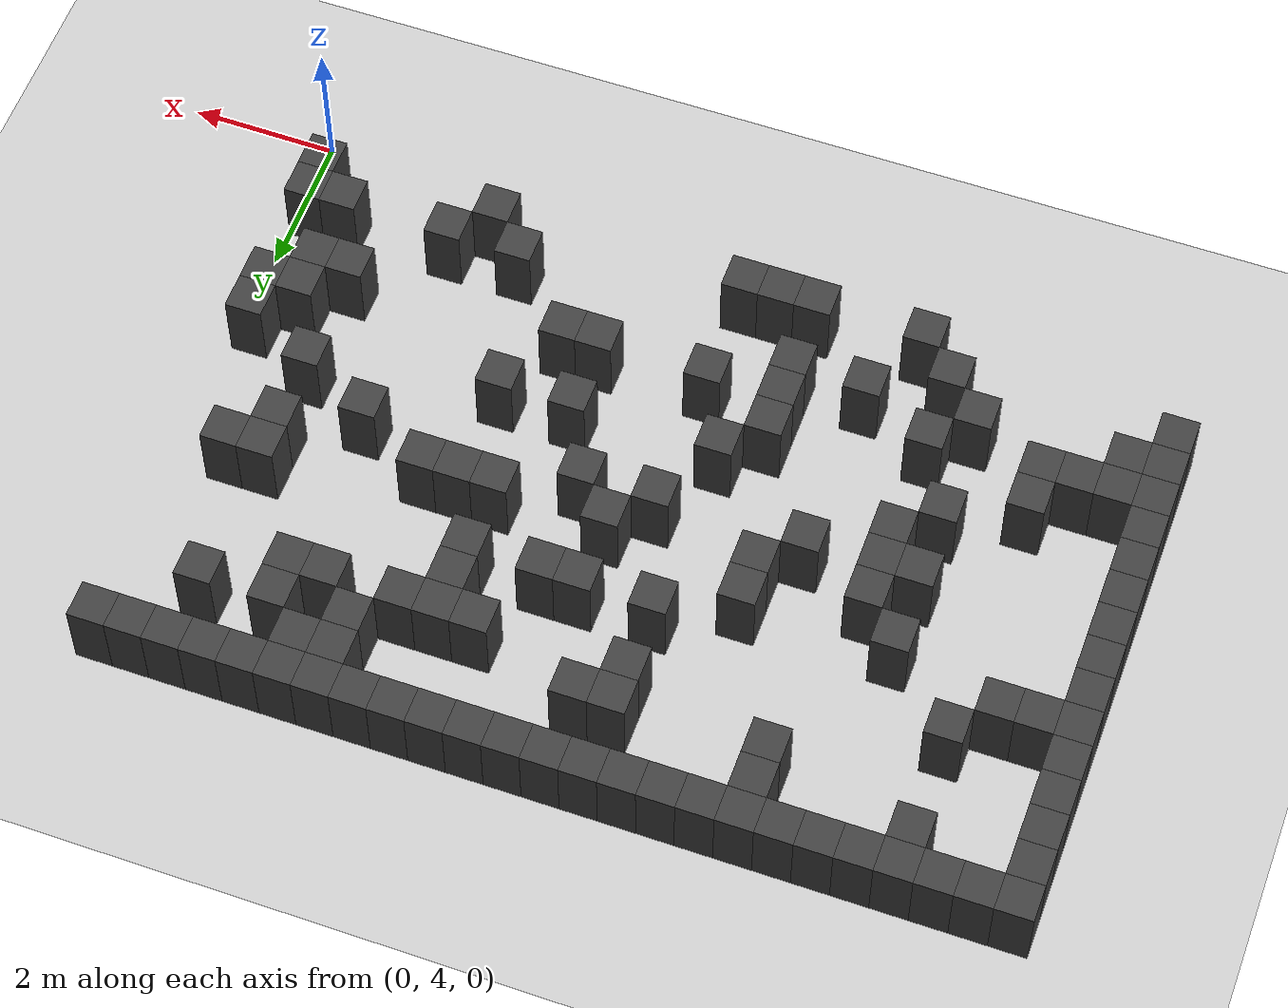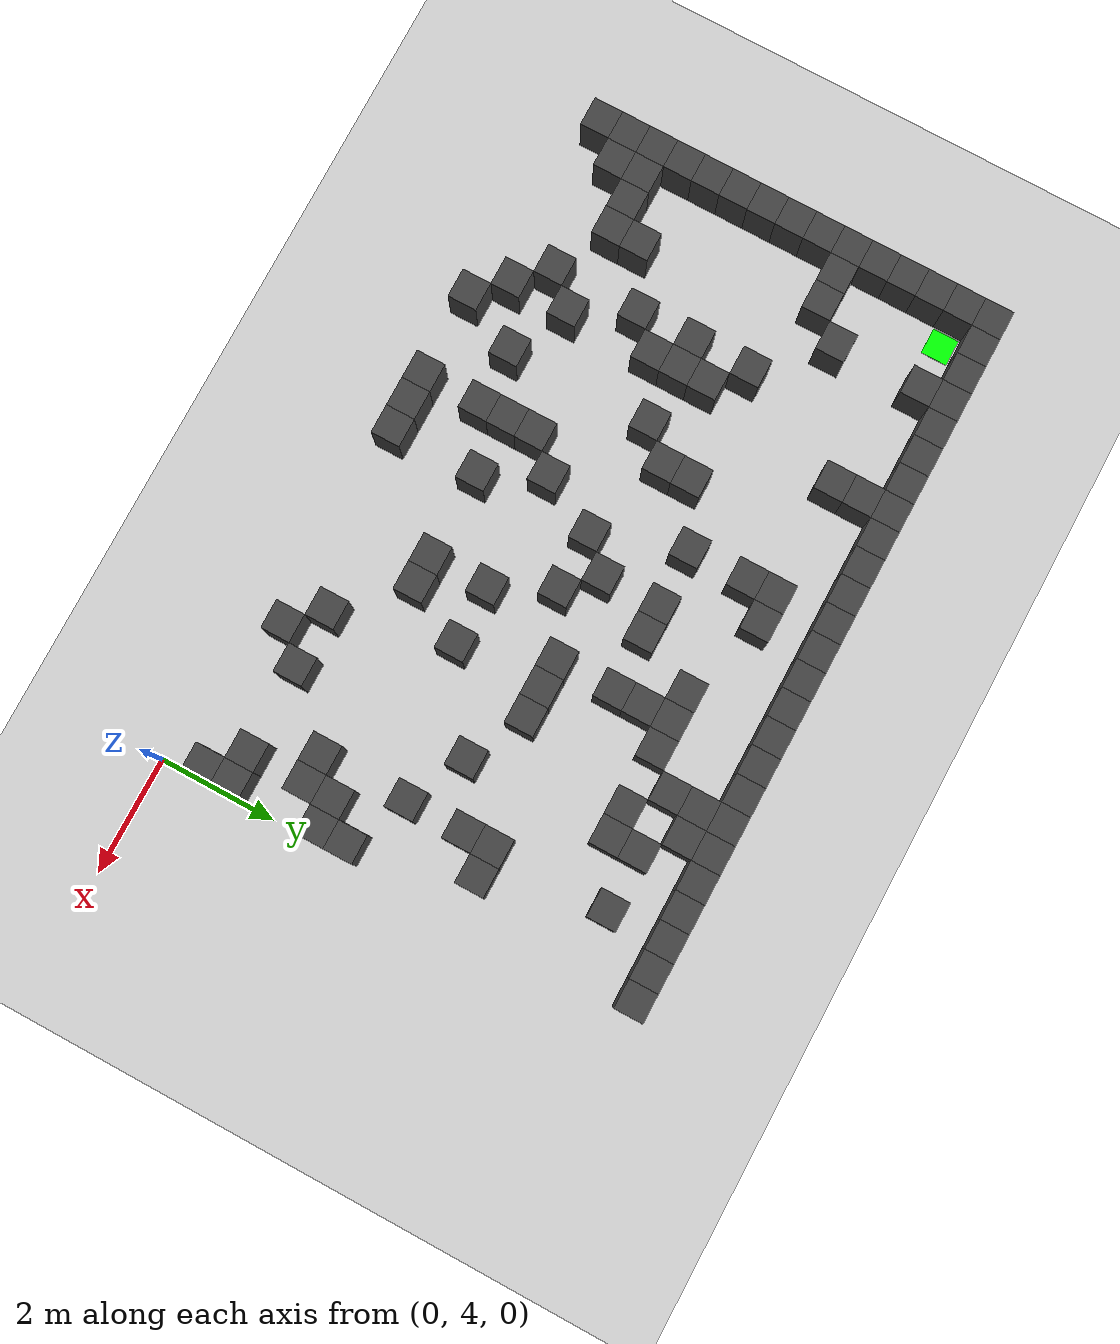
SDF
<sdf version="1.7">
 <world name="map_4557">
  <model name="ground_plane">
   <static>true</static>
   <link name="link">
    <collision name="collision">
     <geometry><plane><normal>0 0 1</normal><size>200 200</size></plane></geometry>
    </collision>
    <visual name="visual">
     <geometry><plane><normal>0 0 1</normal><size>200 200</size></plane></geometry>
     <material><ambient>0.8 0.8 0.8 1</ambient><diffuse>0.8 0.8 0.8 1</diffuse></material>
    </visual>
   </link>
  </model>
  <model name="maze_environment">
   <static>true</static>
   <link name="wall_0">
    <pose>-12.250 12.250 0.500 0 0 0</pose>
    <collision name="col"><geometry><box><size>0.5 0.5 1.0</size></box></geometry></collision>
    <visual name="vis">
     <geometry><box><size>0.5 0.5 1.0</size></box></geometry>
     <material><ambient>0.15 0.15 0.15 1</ambient><diffuse>0.25 0.25 0.25 1</diffuse></material>
    </visual>
   </link>
   <link name="wall_1">
    <pose>-11.750 12.250 0.500 0 0 0</pose>
    <collision name="col"><geometry><box><size>0.5 0.5 1.0</size></box></geometry></collision>
    <visual name="vis">
     <geometry><box><size>0.5 0.5 1.0</size></box></geometry>
     <material><ambient>0.15 0.15 0.15 1</ambient><diffuse>0.25 0.25 0.25 1</diffuse></material>
    </visual>
   </link>
   <link name="wall_2">
    <pose>-11.250 12.250 0.500 0 0 0</pose>
    <collision name="col"><geometry><box><size>0.5 0.5 1.0</size></box></geometry></collision>
    <visual name="vis">
     <geometry><box><size>0.5 0.5 1.0</size></box></geometry>
     <material><ambient>0.15 0.15 0.15 1</ambient><diffuse>0.25 0.25 0.25 1</diffuse></material>
    </visual>
   </link>
   <link name="wall_3">
    <pose>-10.750 12.250 0.500 0 0 0</pose>
    <collision name="col"><geometry><box><size>0.5 0.5 1.0</size></box></geometry></collision>
    <visual name="vis">
     <geometry><box><size>0.5 0.5 1.0</size></box></geometry>
     <material><ambient>0.15 0.15 0.15 1</ambient><diffuse>0.25 0.25 0.25 1</diffuse></material>
    </visual>
   </link>
   <link name="wall_4">
    <pose>-10.250 12.250 0.500 0 0 0</pose>
    <collision name="col"><geometry><box><size>0.5 0.5 1.0</size></box></geometry></collision>
    <visual name="vis">
     <geometry><box><size>0.5 0.5 1.0</size></box></geometry>
     <material><ambient>0.15 0.15 0.15 1</ambient><diffuse>0.25 0.25 0.25 1</diffuse></material>
    </visual>
   </link>
   <link name="wall_5">
    <pose>-9.750 12.250 0.500 0 0 0</pose>
    <collision name="col"><geometry><box><size>0.5 0.5 1.0</size></box></geometry></collision>
    <visual name="vis">
     <geometry><box><size>0.5 0.5 1.0</size></box></geometry>
     <material><ambient>0.15 0.15 0.15 1</ambient><diffuse>0.25 0.25 0.25 1</diffuse></material>
    </visual>
   </link>
   <link name="wall_6">
    <pose>-9.250 12.250 0.500 0 0 0</pose>
    <collision name="col"><geometry><box><size>0.5 0.5 1.0</size></box></geometry></collision>
    <visual name="vis">
     <geometry><box><size>0.5 0.5 1.0</size></box></geometry>
     <material><ambient>0.15 0.15 0.15 1</ambient><diffuse>0.25 0.25 0.25 1</diffuse></material>
    </visual>
   </link>
   <link name="wall_7">
    <pose>-8.750 12.250 0.500 0 0 0</pose>
    <collision name="col"><geometry><box><size>0.5 0.5 1.0</size></box></geometry></collision>
    <visual name="vis">
     <geometry><box><size>0.5 0.5 1.0</size></box></geometry>
     <material><ambient>0.15 0.15 0.15 1</ambient><diffuse>0.25 0.25 0.25 1</diffuse></material>
    </visual>
   </link>
   <link name="wall_8">
    <pose>-8.250 12.250 0.500 0 0 0</pose>
    <collision name="col"><geometry><box><size>0.5 0.5 1.0</size></box></geometry></collision>
    <visual name="vis">
     <geometry><box><size>0.5 0.5 1.0</size></box></geometry>
     <material><ambient>0.15 0.15 0.15 1</ambient><diffuse>0.25 0.25 0.25 1</diffuse></material>
    </visual>
   </link>
   <link name="wall_9">
    <pose>-7.750 12.250 0.500 0 0 0</pose>
    <collision name="col"><geometry><box><size>0.5 0.5 1.0</size></box></geometry></collision>
    <visual name="vis">
     <geometry><box><size>0.5 0.5 1.0</size></box></geometry>
     <material><ambient>0.15 0.15 0.15 1</ambient><diffuse>0.25 0.25 0.25 1</diffuse></material>
    </visual>
   </link>
   <link name="wall_10">
    <pose>-7.250 12.250 0.500 0 0 0</pose>
    <collision name="col"><geometry><box><size>0.5 0.5 1.0</size></box></geometry></collision>
    <visual name="vis">
     <geometry><box><size>0.5 0.5 1.0</size></box></geometry>
     <material><ambient>0.15 0.15 0.15 1</ambient><diffuse>0.25 0.25 0.25 1</diffuse></material>
    </visual>
   </link>
   <link name="wall_11">
    <pose>-6.750 12.250 0.500 0 0 0</pose>
    <collision name="col"><geometry><box><size>0.5 0.5 1.0</size></box></geometry></collision>
    <visual name="vis">
     <geometry><box><size>0.5 0.5 1.0</size></box></geometry>
     <material><ambient>0.15 0.15 0.15 1</ambient><diffuse>0.25 0.25 0.25 1</diffuse></material>
    </visual>
   </link>
   <link name="wall_12">
    <pose>-6.250 12.250 0.500 0 0 0</pose>
    <collision name="col"><geometry><box><size>0.5 0.5 1.0</size></box></geometry></collision>
    <visual name="vis">
     <geometry><box><size>0.5 0.5 1.0</size></box></geometry>
     <material><ambient>0.15 0.15 0.15 1</ambient><diffuse>0.25 0.25 0.25 1</diffuse></material>
    </visual>
   </link>
   <link name="wall_13">
    <pose>-5.750 12.250 0.500 0 0 0</pose>
    <collision name="col"><geometry><box><size>0.5 0.5 1.0</size></box></geometry></collision>
    <visual name="vis">
     <geometry><box><size>0.5 0.5 1.0</size></box></geometry>
     <material><ambient>0.15 0.15 0.15 1</ambient><diffuse>0.25 0.25 0.25 1</diffuse></material>
    </visual>
   </link>
   <link name="wall_14">
    <pose>-5.250 12.250 0.500 0 0 0</pose>
    <collision name="col"><geometry><box><size>0.5 0.5 1.0</size></box></geometry></collision>
    <visual name="vis">
     <geometry><box><size>0.5 0.5 1.0</size></box></geometry>
     <material><ambient>0.15 0.15 0.15 1</ambient><diffuse>0.25 0.25 0.25 1</diffuse></material>
    </visual>
   </link>
   <link name="wall_15">
    <pose>-4.750 12.250 0.500 0 0 0</pose>
    <collision name="col"><geometry><box><size>0.5 0.5 1.0</size></box></geometry></collision>
    <visual name="vis">
     <geometry><box><size>0.5 0.5 1.0</size></box></geometry>
     <material><ambient>0.15 0.15 0.15 1</ambient><diffuse>0.25 0.25 0.25 1</diffuse></material>
    </visual>
   </link>
   <link name="wall_16">
    <pose>-4.250 12.250 0.500 0 0 0</pose>
    <collision name="col"><geometry><box><size>0.5 0.5 1.0</size></box></geometry></collision>
    <visual name="vis">
     <geometry><box><size>0.5 0.5 1.0</size></box></geometry>
     <material><ambient>0.15 0.15 0.15 1</ambient><diffuse>0.25 0.25 0.25 1</diffuse></material>
    </visual>
   </link>
   <link name="wall_17">
    <pose>-3.750 12.250 0.500 0 0 0</pose>
    <collision name="col"><geometry><box><size>0.5 0.5 1.0</size></box></geometry></collision>
    <visual name="vis">
     <geometry><box><size>0.5 0.5 1.0</size></box></geometry>
     <material><ambient>0.15 0.15 0.15 1</ambient><diffuse>0.25 0.25 0.25 1</diffuse></material>
    </visual>
   </link>
   <link name="wall_18">
    <pose>-3.250 12.250 0.500 0 0 0</pose>
    <collision name="col"><geometry><box><size>0.5 0.5 1.0</size></box></geometry></collision>
    <visual name="vis">
     <geometry><box><size>0.5 0.5 1.0</size></box></geometry>
     <material><ambient>0.15 0.15 0.15 1</ambient><diffuse>0.25 0.25 0.25 1</diffuse></material>
    </visual>
   </link>
   <link name="wall_19">
    <pose>-2.750 12.250 0.500 0 0 0</pose>
    <collision name="col"><geometry><box><size>0.5 0.5 1.0</size></box></geometry></collision>
    <visual name="vis">
     <geometry><box><size>0.5 0.5 1.0</size></box></geometry>
     <material><ambient>0.15 0.15 0.15 1</ambient><diffuse>0.25 0.25 0.25 1</diffuse></material>
    </visual>
   </link>
   <link name="wall_20">
    <pose>-2.250 12.250 0.500 0 0 0</pose>
    <collision name="col"><geometry><box><size>0.5 0.5 1.0</size></box></geometry></collision>
    <visual name="vis">
     <geometry><box><size>0.5 0.5 1.0</size></box></geometry>
     <material><ambient>0.15 0.15 0.15 1</ambient><diffuse>0.25 0.25 0.25 1</diffuse></material>
    </visual>
   </link>
   <link name="wall_21">
    <pose>-1.750 12.250 0.500 0 0 0</pose>
    <collision name="col"><geometry><box><size>0.5 0.5 1.0</size></box></geometry></collision>
    <visual name="vis">
     <geometry><box><size>0.5 0.5 1.0</size></box></geometry>
     <material><ambient>0.15 0.15 0.15 1</ambient><diffuse>0.25 0.25 0.25 1</diffuse></material>
    </visual>
   </link>
   <link name="wall_22">
    <pose>-1.250 12.250 0.500 0 0 0</pose>
    <collision name="col"><geometry><box><size>0.5 0.5 1.0</size></box></geometry></collision>
    <visual name="vis">
     <geometry><box><size>0.5 0.5 1.0</size></box></geometry>
     <material><ambient>0.15 0.15 0.15 1</ambient><diffuse>0.25 0.25 0.25 1</diffuse></material>
    </visual>
   </link>
   <link name="wall_23">
    <pose>-0.750 12.250 0.500 0 0 0</pose>
    <collision name="col"><geometry><box><size>0.5 0.5 1.0</size></box></geometry></collision>
    <visual name="vis">
     <geometry><box><size>0.5 0.5 1.0</size></box></geometry>
     <material><ambient>0.15 0.15 0.15 1</ambient><diffuse>0.25 0.25 0.25 1</diffuse></material>
    </visual>
   </link>
   <link name="wall_24">
    <pose>-0.250 12.250 0.500 0 0 0</pose>
    <collision name="col"><geometry><box><size>0.5 0.5 1.0</size></box></geometry></collision>
    <visual name="vis">
     <geometry><box><size>0.5 0.5 1.0</size></box></geometry>
     <material><ambient>0.15 0.15 0.15 1</ambient><diffuse>0.25 0.25 0.25 1</diffuse></material>
    </visual>
   </link>
   <link name="wall_50">
    <pose>-12.250 11.750 0.500 0 0 0</pose>
    <collision name="col"><geometry><box><size>0.5 0.5 1.0</size></box></geometry></collision>
    <visual name="vis">
     <geometry><box><size>0.5 0.5 1.0</size></box></geometry>
     <material><ambient>0.15 0.15 0.15 1</ambient><diffuse>0.25 0.25 0.25 1</diffuse></material>
    </visual>
   </link>
   <link name="wall_51">
    <pose>-10.750 11.750 0.500 0 0 0</pose>
    <collision name="col"><geometry><box><size>0.5 0.5 1.0</size></box></geometry></collision>
    <visual name="vis">
     <geometry><box><size>0.5 0.5 1.0</size></box></geometry>
     <material><ambient>0.15 0.15 0.15 1</ambient><diffuse>0.25 0.25 0.25 1</diffuse></material>
    </visual>
   </link>
   <link name="wall_52">
    <pose>-8.750 11.750 0.500 0 0 0</pose>
    <collision name="col"><geometry><box><size>0.5 0.5 1.0</size></box></geometry></collision>
    <visual name="vis">
     <geometry><box><size>0.5 0.5 1.0</size></box></geometry>
     <material><ambient>0.15 0.15 0.15 1</ambient><diffuse>0.25 0.25 0.25 1</diffuse></material>
    </visual>
   </link>
   <link name="wall_53">
    <pose>-3.250 11.750 0.500 0 0 0</pose>
    <collision name="col"><geometry><box><size>0.5 0.5 1.0</size></box></geometry></collision>
    <visual name="vis">
     <geometry><box><size>0.5 0.5 1.0</size></box></geometry>
     <material><ambient>0.15 0.15 0.15 1</ambient><diffuse>0.25 0.25 0.25 1</diffuse></material>
    </visual>
   </link>
   <link name="wall_54">
    <pose>-2.750 11.750 0.500 0 0 0</pose>
    <collision name="col"><geometry><box><size>0.5 0.5 1.0</size></box></geometry></collision>
    <visual name="vis">
     <geometry><box><size>0.5 0.5 1.0</size></box></geometry>
     <material><ambient>0.15 0.15 0.15 1</ambient><diffuse>0.25 0.25 0.25 1</diffuse></material>
    </visual>
   </link>
   <link name="wall_63">
    <pose>-12.250 11.250 0.500 0 0 0</pose>
    <collision name="col"><geometry><box><size>0.5 0.5 1.0</size></box></geometry></collision>
    <visual name="vis">
     <geometry><box><size>0.5 0.5 1.0</size></box></geometry>
     <material><ambient>0.15 0.15 0.15 1</ambient><diffuse>0.25 0.25 0.25 1</diffuse></material>
    </visual>
   </link>
   <link name="wall_64">
    <pose>-8.750 11.250 0.500 0 0 0</pose>
    <collision name="col"><geometry><box><size>0.5 0.5 1.0</size></box></geometry></collision>
    <visual name="vis">
     <geometry><box><size>0.5 0.5 1.0</size></box></geometry>
     <material><ambient>0.15 0.15 0.15 1</ambient><diffuse>0.25 0.25 0.25 1</diffuse></material>
    </visual>
   </link>
   <link name="wall_65">
    <pose>-6.750 11.250 0.500 0 0 0</pose>
    <collision name="col"><geometry><box><size>0.5 0.5 1.0</size></box></geometry></collision>
    <visual name="vis">
     <geometry><box><size>0.5 0.5 1.0</size></box></geometry>
     <material><ambient>0.15 0.15 0.15 1</ambient><diffuse>0.25 0.25 0.25 1</diffuse></material>
    </visual>
   </link>
   <link name="wall_66">
    <pose>-6.250 11.250 0.500 0 0 0</pose>
    <collision name="col"><geometry><box><size>0.5 0.5 1.0</size></box></geometry></collision>
    <visual name="vis">
     <geometry><box><size>0.5 0.5 1.0</size></box></geometry>
     <material><ambient>0.15 0.15 0.15 1</ambient><diffuse>0.25 0.25 0.25 1</diffuse></material>
    </visual>
   </link>
   <link name="wall_67">
    <pose>-3.250 11.250 0.500 0 0 0</pose>
    <collision name="col"><geometry><box><size>0.5 0.5 1.0</size></box></geometry></collision>
    <visual name="vis">
     <geometry><box><size>0.5 0.5 1.0</size></box></geometry>
     <material><ambient>0.15 0.15 0.15 1</ambient><diffuse>0.25 0.25 0.25 1</diffuse></material>
    </visual>
   </link>
   <link name="wall_68">
    <pose>-2.250 11.250 0.500 0 0 0</pose>
    <collision name="col"><geometry><box><size>0.5 0.5 1.0</size></box></geometry></collision>
    <visual name="vis">
     <geometry><box><size>0.5 0.5 1.0</size></box></geometry>
     <material><ambient>0.15 0.15 0.15 1</ambient><diffuse>0.25 0.25 0.25 1</diffuse></material>
    </visual>
   </link>
   <link name="wall_69">
    <pose>-1.250 11.250 0.500 0 0 0</pose>
    <collision name="col"><geometry><box><size>0.5 0.5 1.0</size></box></geometry></collision>
    <visual name="vis">
     <geometry><box><size>0.5 0.5 1.0</size></box></geometry>
     <material><ambient>0.15 0.15 0.15 1</ambient><diffuse>0.25 0.25 0.25 1</diffuse></material>
    </visual>
   </link>
   <link name="wall_79">
    <pose>-12.250 10.750 0.500 0 0 0</pose>
    <collision name="col"><geometry><box><size>0.5 0.5 1.0</size></box></geometry></collision>
    <visual name="vis">
     <geometry><box><size>0.5 0.5 1.0</size></box></geometry>
     <material><ambient>0.15 0.15 0.15 1</ambient><diffuse>0.25 0.25 0.25 1</diffuse></material>
    </visual>
   </link>
   <link name="wall_80">
    <pose>-6.750 10.750 0.500 0 0 0</pose>
    <collision name="col"><geometry><box><size>0.5 0.5 1.0</size></box></geometry></collision>
    <visual name="vis">
     <geometry><box><size>0.5 0.5 1.0</size></box></geometry>
     <material><ambient>0.15 0.15 0.15 1</ambient><diffuse>0.25 0.25 0.25 1</diffuse></material>
    </visual>
   </link>
   <link name="wall_81">
    <pose>-4.750 10.750 0.500 0 0 0</pose>
    <collision name="col"><geometry><box><size>0.5 0.5 1.0</size></box></geometry></collision>
    <visual name="vis">
     <geometry><box><size>0.5 0.5 1.0</size></box></geometry>
     <material><ambient>0.15 0.15 0.15 1</ambient><diffuse>0.25 0.25 0.25 1</diffuse></material>
    </visual>
   </link>
   <link name="wall_82">
    <pose>-4.250 10.750 0.500 0 0 0</pose>
    <collision name="col"><geometry><box><size>0.5 0.5 1.0</size></box></geometry></collision>
    <visual name="vis">
     <geometry><box><size>0.5 0.5 1.0</size></box></geometry>
     <material><ambient>0.15 0.15 0.15 1</ambient><diffuse>0.25 0.25 0.25 1</diffuse></material>
    </visual>
   </link>
   <link name="wall_83">
    <pose>-3.750 10.750 0.500 0 0 0</pose>
    <collision name="col"><geometry><box><size>0.5 0.5 1.0</size></box></geometry></collision>
    <visual name="vis">
     <geometry><box><size>0.5 0.5 1.0</size></box></geometry>
     <material><ambient>0.15 0.15 0.15 1</ambient><diffuse>0.25 0.25 0.25 1</diffuse></material>
    </visual>
   </link>
   <link name="wall_84">
    <pose>-2.750 10.750 0.500 0 0 0</pose>
    <collision name="col"><geometry><box><size>0.5 0.5 1.0</size></box></geometry></collision>
    <visual name="vis">
     <geometry><box><size>0.5 0.5 1.0</size></box></geometry>
     <material><ambient>0.15 0.15 0.15 1</ambient><diffuse>0.25 0.25 0.25 1</diffuse></material>
    </visual>
   </link>
   <link name="wall_85">
    <pose>-2.250 10.750 0.500 0 0 0</pose>
    <collision name="col"><geometry><box><size>0.5 0.5 1.0</size></box></geometry></collision>
    <visual name="vis">
     <geometry><box><size>0.5 0.5 1.0</size></box></geometry>
     <material><ambient>0.15 0.15 0.15 1</ambient><diffuse>0.25 0.25 0.25 1</diffuse></material>
    </visual>
   </link>
   <link name="wall_95">
    <pose>-12.250 10.250 0.500 0 0 0</pose>
    <collision name="col"><geometry><box><size>0.5 0.5 1.0</size></box></geometry></collision>
    <visual name="vis">
     <geometry><box><size>0.5 0.5 1.0</size></box></geometry>
     <material><ambient>0.15 0.15 0.15 1</ambient><diffuse>0.25 0.25 0.25 1</diffuse></material>
    </visual>
   </link>
   <link name="wall_96">
    <pose>-10.750 10.250 0.500 0 0 0</pose>
    <collision name="col"><geometry><box><size>0.5 0.5 1.0</size></box></geometry></collision>
    <visual name="vis">
     <geometry><box><size>0.5 0.5 1.0</size></box></geometry>
     <material><ambient>0.15 0.15 0.15 1</ambient><diffuse>0.25 0.25 0.25 1</diffuse></material>
    </visual>
   </link>
   <link name="wall_97">
    <pose>-4.250 10.250 0.500 0 0 0</pose>
    <collision name="col"><geometry><box><size>0.5 0.5 1.0</size></box></geometry></collision>
    <visual name="vis">
     <geometry><box><size>0.5 0.5 1.0</size></box></geometry>
     <material><ambient>0.15 0.15 0.15 1</ambient><diffuse>0.25 0.25 0.25 1</diffuse></material>
    </visual>
   </link>
   <link name="wall_105">
    <pose>-12.250 9.750 0.500 0 0 0</pose>
    <collision name="col"><geometry><box><size>0.5 0.5 1.0</size></box></geometry></collision>
    <visual name="vis">
     <geometry><box><size>0.5 0.5 1.0</size></box></geometry>
     <material><ambient>0.15 0.15 0.15 1</ambient><diffuse>0.25 0.25 0.25 1</diffuse></material>
    </visual>
   </link>
   <link name="wall_106">
    <pose>-11.750 9.750 0.500 0 0 0</pose>
    <collision name="col"><geometry><box><size>0.5 0.5 1.0</size></box></geometry></collision>
    <visual name="vis">
     <geometry><box><size>0.5 0.5 1.0</size></box></geometry>
     <material><ambient>0.15 0.15 0.15 1</ambient><diffuse>0.25 0.25 0.25 1</diffuse></material>
    </visual>
   </link>
   <link name="wall_107">
    <pose>-11.250 9.750 0.500 0 0 0</pose>
    <collision name="col"><geometry><box><size>0.5 0.5 1.0</size></box></geometry></collision>
    <visual name="vis">
     <geometry><box><size>0.5 0.5 1.0</size></box></geometry>
     <material><ambient>0.15 0.15 0.15 1</ambient><diffuse>0.25 0.25 0.25 1</diffuse></material>
    </visual>
   </link>
   <link name="wall_108">
    <pose>-6.750 9.750 0.500 0 0 0</pose>
    <collision name="col"><geometry><box><size>0.5 0.5 1.0</size></box></geometry></collision>
    <visual name="vis">
     <geometry><box><size>0.5 0.5 1.0</size></box></geometry>
     <material><ambient>0.15 0.15 0.15 1</ambient><diffuse>0.25 0.25 0.25 1</diffuse></material>
    </visual>
   </link>
   <link name="wall_109">
    <pose>-5.750 9.750 0.500 0 0 0</pose>
    <collision name="col"><geometry><box><size>0.5 0.5 1.0</size></box></geometry></collision>
    <visual name="vis">
     <geometry><box><size>0.5 0.5 1.0</size></box></geometry>
     <material><ambient>0.15 0.15 0.15 1</ambient><diffuse>0.25 0.25 0.25 1</diffuse></material>
    </visual>
   </link>
   <link name="wall_110">
    <pose>-5.250 9.750 0.500 0 0 0</pose>
    <collision name="col"><geometry><box><size>0.5 0.5 1.0</size></box></geometry></collision>
    <visual name="vis">
     <geometry><box><size>0.5 0.5 1.0</size></box></geometry>
     <material><ambient>0.15 0.15 0.15 1</ambient><diffuse>0.25 0.25 0.25 1</diffuse></material>
    </visual>
   </link>
   <link name="wall_111">
    <pose>-4.250 9.750 0.500 0 0 0</pose>
    <collision name="col"><geometry><box><size>0.5 0.5 1.0</size></box></geometry></collision>
    <visual name="vis">
     <geometry><box><size>0.5 0.5 1.0</size></box></geometry>
     <material><ambient>0.15 0.15 0.15 1</ambient><diffuse>0.25 0.25 0.25 1</diffuse></material>
    </visual>
   </link>
   <link name="wall_116">
    <pose>-12.250 9.250 0.500 0 0 0</pose>
    <collision name="col"><geometry><box><size>0.5 0.5 1.0</size></box></geometry></collision>
    <visual name="vis">
     <geometry><box><size>0.5 0.5 1.0</size></box></geometry>
     <material><ambient>0.15 0.15 0.15 1</ambient><diffuse>0.25 0.25 0.25 1</diffuse></material>
    </visual>
   </link>
   <link name="wall_117">
    <pose>-9.750 9.250 0.500 0 0 0</pose>
    <collision name="col"><geometry><box><size>0.5 0.5 1.0</size></box></geometry></collision>
    <visual name="vis">
     <geometry><box><size>0.5 0.5 1.0</size></box></geometry>
     <material><ambient>0.15 0.15 0.15 1</ambient><diffuse>0.25 0.25 0.25 1</diffuse></material>
    </visual>
   </link>
   <link name="wall_118">
    <pose>-7.750 9.250 0.500 0 0 0</pose>
    <collision name="col"><geometry><box><size>0.5 0.5 1.0</size></box></geometry></collision>
    <visual name="vis">
     <geometry><box><size>0.5 0.5 1.0</size></box></geometry>
     <material><ambient>0.15 0.15 0.15 1</ambient><diffuse>0.25 0.25 0.25 1</diffuse></material>
    </visual>
   </link>
   <link name="wall_119">
    <pose>-1.250 9.250 0.500 0 0 0</pose>
    <collision name="col"><geometry><box><size>0.5 0.5 1.0</size></box></geometry></collision>
    <visual name="vis">
     <geometry><box><size>0.5 0.5 1.0</size></box></geometry>
     <material><ambient>0.15 0.15 0.15 1</ambient><diffuse>0.25 0.25 0.25 1</diffuse></material>
    </visual>
   </link>
   <link name="wall_120">
    <pose>-0.750 9.250 0.500 0 0 0</pose>
    <collision name="col"><geometry><box><size>0.5 0.5 1.0</size></box></geometry></collision>
    <visual name="vis">
     <geometry><box><size>0.5 0.5 1.0</size></box></geometry>
     <material><ambient>0.15 0.15 0.15 1</ambient><diffuse>0.25 0.25 0.25 1</diffuse></material>
    </visual>
   </link>
   <link name="wall_126">
    <pose>-12.250 8.750 0.500 0 0 0</pose>
    <collision name="col"><geometry><box><size>0.5 0.5 1.0</size></box></geometry></collision>
    <visual name="vis">
     <geometry><box><size>0.5 0.5 1.0</size></box></geometry>
     <material><ambient>0.15 0.15 0.15 1</ambient><diffuse>0.25 0.25 0.25 1</diffuse></material>
    </visual>
   </link>
   <link name="wall_127">
    <pose>-9.250 8.750 0.500 0 0 0</pose>
    <collision name="col"><geometry><box><size>0.5 0.5 1.0</size></box></geometry></collision>
    <visual name="vis">
     <geometry><box><size>0.5 0.5 1.0</size></box></geometry>
     <material><ambient>0.15 0.15 0.15 1</ambient><diffuse>0.25 0.25 0.25 1</diffuse></material>
    </visual>
   </link>
   <link name="wall_128">
    <pose>-7.750 8.750 0.500 0 0 0</pose>
    <collision name="col"><geometry><box><size>0.5 0.5 1.0</size></box></geometry></collision>
    <visual name="vis">
     <geometry><box><size>0.5 0.5 1.0</size></box></geometry>
     <material><ambient>0.15 0.15 0.15 1</ambient><diffuse>0.25 0.25 0.25 1</diffuse></material>
    </visual>
   </link>
   <link name="wall_129">
    <pose>-5.750 8.750 0.500 0 0 0</pose>
    <collision name="col"><geometry><box><size>0.5 0.5 1.0</size></box></geometry></collision>
    <visual name="vis">
     <geometry><box><size>0.5 0.5 1.0</size></box></geometry>
     <material><ambient>0.15 0.15 0.15 1</ambient><diffuse>0.25 0.25 0.25 1</diffuse></material>
    </visual>
   </link>
   <link name="wall_130">
    <pose>-4.250 8.750 0.500 0 0 0</pose>
    <collision name="col"><geometry><box><size>0.5 0.5 1.0</size></box></geometry></collision>
    <visual name="vis">
     <geometry><box><size>0.5 0.5 1.0</size></box></geometry>
     <material><ambient>0.15 0.15 0.15 1</ambient><diffuse>0.25 0.25 0.25 1</diffuse></material>
    </visual>
   </link>
   <link name="wall_131">
    <pose>-3.750 8.750 0.500 0 0 0</pose>
    <collision name="col"><geometry><box><size>0.5 0.5 1.0</size></box></geometry></collision>
    <visual name="vis">
     <geometry><box><size>0.5 0.5 1.0</size></box></geometry>
     <material><ambient>0.15 0.15 0.15 1</ambient><diffuse>0.25 0.25 0.25 1</diffuse></material>
    </visual>
   </link>
   <link name="wall_132">
    <pose>-3.250 8.750 0.500 0 0 0</pose>
    <collision name="col"><geometry><box><size>0.5 0.5 1.0</size></box></geometry></collision>
    <visual name="vis">
     <geometry><box><size>0.5 0.5 1.0</size></box></geometry>
     <material><ambient>0.15 0.15 0.15 1</ambient><diffuse>0.25 0.25 0.25 1</diffuse></material>
    </visual>
   </link>
   <link name="wall_133">
    <pose>-1.250 8.750 0.500 0 0 0</pose>
    <collision name="col"><geometry><box><size>0.5 0.5 1.0</size></box></geometry></collision>
    <visual name="vis">
     <geometry><box><size>0.5 0.5 1.0</size></box></geometry>
     <material><ambient>0.15 0.15 0.15 1</ambient><diffuse>0.25 0.25 0.25 1</diffuse></material>
    </visual>
   </link>
   <link name="wall_142">
    <pose>-12.250 8.250 0.500 0 0 0</pose>
    <collision name="col"><geometry><box><size>0.5 0.5 1.0</size></box></geometry></collision>
    <visual name="vis">
     <geometry><box><size>0.5 0.5 1.0</size></box></geometry>
     <material><ambient>0.15 0.15 0.15 1</ambient><diffuse>0.25 0.25 0.25 1</diffuse></material>
    </visual>
   </link>
   <link name="wall_143">
    <pose>-9.750 8.250 0.500 0 0 0</pose>
    <collision name="col"><geometry><box><size>0.5 0.5 1.0</size></box></geometry></collision>
    <visual name="vis">
     <geometry><box><size>0.5 0.5 1.0</size></box></geometry>
     <material><ambient>0.15 0.15 0.15 1</ambient><diffuse>0.25 0.25 0.25 1</diffuse></material>
    </visual>
   </link>
   <link name="wall_144">
    <pose>-9.250 8.250 0.500 0 0 0</pose>
    <collision name="col"><geometry><box><size>0.5 0.5 1.0</size></box></geometry></collision>
    <visual name="vis">
     <geometry><box><size>0.5 0.5 1.0</size></box></geometry>
     <material><ambient>0.15 0.15 0.15 1</ambient><diffuse>0.25 0.25 0.25 1</diffuse></material>
    </visual>
   </link>
   <link name="wall_145">
    <pose>-8.250 8.250 0.500 0 0 0</pose>
    <collision name="col"><geometry><box><size>0.5 0.5 1.0</size></box></geometry></collision>
    <visual name="vis">
     <geometry><box><size>0.5 0.5 1.0</size></box></geometry>
     <material><ambient>0.15 0.15 0.15 1</ambient><diffuse>0.25 0.25 0.25 1</diffuse></material>
    </visual>
   </link>
   <link name="wall_146">
    <pose>-6.250 8.250 0.500 0 0 0</pose>
    <collision name="col"><geometry><box><size>0.5 0.5 1.0</size></box></geometry></collision>
    <visual name="vis">
     <geometry><box><size>0.5 0.5 1.0</size></box></geometry>
     <material><ambient>0.15 0.15 0.15 1</ambient><diffuse>0.25 0.25 0.25 1</diffuse></material>
    </visual>
   </link>
   <link name="wall_147">
    <pose>-5.250 8.250 0.500 0 0 0</pose>
    <collision name="col"><geometry><box><size>0.5 0.5 1.0</size></box></geometry></collision>
    <visual name="vis">
     <geometry><box><size>0.5 0.5 1.0</size></box></geometry>
     <material><ambient>0.15 0.15 0.15 1</ambient><diffuse>0.25 0.25 0.25 1</diffuse></material>
    </visual>
   </link>
   <link name="wall_148">
    <pose>-2.250 8.250 0.500 0 0 0</pose>
    <collision name="col"><geometry><box><size>0.5 0.5 1.0</size></box></geometry></collision>
    <visual name="vis">
     <geometry><box><size>0.5 0.5 1.0</size></box></geometry>
     <material><ambient>0.15 0.15 0.15 1</ambient><diffuse>0.25 0.25 0.25 1</diffuse></material>
    </visual>
   </link>
   <link name="wall_155">
    <pose>-12.250 7.750 0.500 0 0 0</pose>
    <collision name="col"><geometry><box><size>0.5 0.5 1.0</size></box></geometry></collision>
    <visual name="vis">
     <geometry><box><size>0.5 0.5 1.0</size></box></geometry>
     <material><ambient>0.15 0.15 0.15 1</ambient><diffuse>0.25 0.25 0.25 1</diffuse></material>
    </visual>
   </link>
   <link name="wall_156">
    <pose>-9.250 7.750 0.500 0 0 0</pose>
    <collision name="col"><geometry><box><size>0.5 0.5 1.0</size></box></geometry></collision>
    <visual name="vis">
     <geometry><box><size>0.5 0.5 1.0</size></box></geometry>
     <material><ambient>0.15 0.15 0.15 1</ambient><diffuse>0.25 0.25 0.25 1</diffuse></material>
    </visual>
   </link>
   <link name="wall_157">
    <pose>-1.250 7.750 0.500 0 0 0</pose>
    <collision name="col"><geometry><box><size>0.5 0.5 1.0</size></box></geometry></collision>
    <visual name="vis">
     <geometry><box><size>0.5 0.5 1.0</size></box></geometry>
     <material><ambient>0.15 0.15 0.15 1</ambient><diffuse>0.25 0.25 0.25 1</diffuse></material>
    </visual>
   </link>
   <link name="wall_163">
    <pose>-12.250 7.250 0.500 0 0 0</pose>
    <collision name="col"><geometry><box><size>0.5 0.5 1.0</size></box></geometry></collision>
    <visual name="vis">
     <geometry><box><size>0.5 0.5 1.0</size></box></geometry>
     <material><ambient>0.15 0.15 0.15 1</ambient><diffuse>0.25 0.25 0.25 1</diffuse></material>
    </visual>
   </link>
   <link name="wall_164">
    <pose>-9.750 7.250 0.500 0 0 0</pose>
    <collision name="col"><geometry><box><size>0.5 0.5 1.0</size></box></geometry></collision>
    <visual name="vis">
     <geometry><box><size>0.5 0.5 1.0</size></box></geometry>
     <material><ambient>0.15 0.15 0.15 1</ambient><diffuse>0.25 0.25 0.25 1</diffuse></material>
    </visual>
   </link>
   <link name="wall_165">
    <pose>-6.750 7.250 0.500 0 0 0</pose>
    <collision name="col"><geometry><box><size>0.5 0.5 1.0</size></box></geometry></collision>
    <visual name="vis">
     <geometry><box><size>0.5 0.5 1.0</size></box></geometry>
     <material><ambient>0.15 0.15 0.15 1</ambient><diffuse>0.25 0.25 0.25 1</diffuse></material>
    </visual>
   </link>
   <link name="wall_166">
    <pose>-4.750 7.250 0.500 0 0 0</pose>
    <collision name="col"><geometry><box><size>0.5 0.5 1.0</size></box></geometry></collision>
    <visual name="vis">
     <geometry><box><size>0.5 0.5 1.0</size></box></geometry>
     <material><ambient>0.15 0.15 0.15 1</ambient><diffuse>0.25 0.25 0.25 1</diffuse></material>
    </visual>
   </link>
   <link name="wall_167">
    <pose>-3.750 7.250 0.500 0 0 0</pose>
    <collision name="col"><geometry><box><size>0.5 0.5 1.0</size></box></geometry></collision>
    <visual name="vis">
     <geometry><box><size>0.5 0.5 1.0</size></box></geometry>
     <material><ambient>0.15 0.15 0.15 1</ambient><diffuse>0.25 0.25 0.25 1</diffuse></material>
    </visual>
   </link>
   <link name="wall_168">
    <pose>-0.250 7.250 0.500 0 0 0</pose>
    <collision name="col"><geometry><box><size>0.5 0.5 1.0</size></box></geometry></collision>
    <visual name="vis">
     <geometry><box><size>0.5 0.5 1.0</size></box></geometry>
     <material><ambient>0.15 0.15 0.15 1</ambient><diffuse>0.25 0.25 0.25 1</diffuse></material>
    </visual>
   </link>
   <link name="wall_179">
    <pose>-12.250 6.750 0.500 0 0 0</pose>
    <collision name="col"><geometry><box><size>0.5 0.5 1.0</size></box></geometry></collision>
    <visual name="vis">
     <geometry><box><size>0.5 0.5 1.0</size></box></geometry>
     <material><ambient>0.15 0.15 0.15 1</ambient><diffuse>0.25 0.25 0.25 1</diffuse></material>
    </visual>
   </link>
   <link name="wall_180">
    <pose>-10.750 6.750 0.500 0 0 0</pose>
    <collision name="col"><geometry><box><size>0.5 0.5 1.0</size></box></geometry></collision>
    <visual name="vis">
     <geometry><box><size>0.5 0.5 1.0</size></box></geometry>
     <material><ambient>0.15 0.15 0.15 1</ambient><diffuse>0.25 0.25 0.25 1</diffuse></material>
    </visual>
   </link>
   <link name="wall_181">
    <pose>-7.250 6.750 0.500 0 0 0</pose>
    <collision name="col"><geometry><box><size>0.5 0.5 1.0</size></box></geometry></collision>
    <visual name="vis">
     <geometry><box><size>0.5 0.5 1.0</size></box></geometry>
     <material><ambient>0.15 0.15 0.15 1</ambient><diffuse>0.25 0.25 0.25 1</diffuse></material>
    </visual>
   </link>
   <link name="wall_182">
    <pose>-0.750 6.750 0.500 0 0 0</pose>
    <collision name="col"><geometry><box><size>0.5 0.5 1.0</size></box></geometry></collision>
    <visual name="vis">
     <geometry><box><size>0.5 0.5 1.0</size></box></geometry>
     <material><ambient>0.15 0.15 0.15 1</ambient><diffuse>0.25 0.25 0.25 1</diffuse></material>
    </visual>
   </link>
   <link name="wall_183">
    <pose>-0.250 6.750 0.500 0 0 0</pose>
    <collision name="col"><geometry><box><size>0.5 0.5 1.0</size></box></geometry></collision>
    <visual name="vis">
     <geometry><box><size>0.5 0.5 1.0</size></box></geometry>
     <material><ambient>0.15 0.15 0.15 1</ambient><diffuse>0.25 0.25 0.25 1</diffuse></material>
    </visual>
   </link>
   <link name="wall_190">
    <pose>-12.250 6.250 0.500 0 0 0</pose>
    <collision name="col"><geometry><box><size>0.5 0.5 1.0</size></box></geometry></collision>
    <visual name="vis">
     <geometry><box><size>0.5 0.5 1.0</size></box></geometry>
     <material><ambient>0.15 0.15 0.15 1</ambient><diffuse>0.25 0.25 0.25 1</diffuse></material>
    </visual>
   </link>
   <link name="wall_191">
    <pose>-11.750 6.250 0.500 0 0 0</pose>
    <collision name="col"><geometry><box><size>0.5 0.5 1.0</size></box></geometry></collision>
    <visual name="vis">
     <geometry><box><size>0.5 0.5 1.0</size></box></geometry>
     <material><ambient>0.15 0.15 0.15 1</ambient><diffuse>0.25 0.25 0.25 1</diffuse></material>
    </visual>
   </link>
   <link name="wall_192">
    <pose>-11.250 6.250 0.500 0 0 0</pose>
    <collision name="col"><geometry><box><size>0.5 0.5 1.0</size></box></geometry></collision>
    <visual name="vis">
     <geometry><box><size>0.5 0.5 1.0</size></box></geometry>
     <material><ambient>0.15 0.15 0.15 1</ambient><diffuse>0.25 0.25 0.25 1</diffuse></material>
    </visual>
   </link>
   <link name="wall_193">
    <pose>-10.750 6.250 0.500 0 0 0</pose>
    <collision name="col"><geometry><box><size>0.5 0.5 1.0</size></box></geometry></collision>
    <visual name="vis">
     <geometry><box><size>0.5 0.5 1.0</size></box></geometry>
     <material><ambient>0.15 0.15 0.15 1</ambient><diffuse>0.25 0.25 0.25 1</diffuse></material>
    </visual>
   </link>
   <link name="wall_194">
    <pose>-9.250 6.250 0.500 0 0 0</pose>
    <collision name="col"><geometry><box><size>0.5 0.5 1.0</size></box></geometry></collision>
    <visual name="vis">
     <geometry><box><size>0.5 0.5 1.0</size></box></geometry>
     <material><ambient>0.15 0.15 0.15 1</ambient><diffuse>0.25 0.25 0.25 1</diffuse></material>
    </visual>
   </link>
   <link name="wall_195">
    <pose>-7.250 6.250 0.500 0 0 0</pose>
    <collision name="col"><geometry><box><size>0.5 0.5 1.0</size></box></geometry></collision>
    <visual name="vis">
     <geometry><box><size>0.5 0.5 1.0</size></box></geometry>
     <material><ambient>0.15 0.15 0.15 1</ambient><diffuse>0.25 0.25 0.25 1</diffuse></material>
    </visual>
   </link>
   <link name="wall_196">
    <pose>-6.250 6.250 0.500 0 0 0</pose>
    <collision name="col"><geometry><box><size>0.5 0.5 1.0</size></box></geometry></collision>
    <visual name="vis">
     <geometry><box><size>0.5 0.5 1.0</size></box></geometry>
     <material><ambient>0.15 0.15 0.15 1</ambient><diffuse>0.25 0.25 0.25 1</diffuse></material>
    </visual>
   </link>
   <link name="wall_197">
    <pose>-4.750 6.250 0.500 0 0 0</pose>
    <collision name="col"><geometry><box><size>0.5 0.5 1.0</size></box></geometry></collision>
    <visual name="vis">
     <geometry><box><size>0.5 0.5 1.0</size></box></geometry>
     <material><ambient>0.15 0.15 0.15 1</ambient><diffuse>0.25 0.25 0.25 1</diffuse></material>
    </visual>
   </link>
   <link name="wall_198">
    <pose>-4.250 6.250 0.500 0 0 0</pose>
    <collision name="col"><geometry><box><size>0.5 0.5 1.0</size></box></geometry></collision>
    <visual name="vis">
     <geometry><box><size>0.5 0.5 1.0</size></box></geometry>
     <material><ambient>0.15 0.15 0.15 1</ambient><diffuse>0.25 0.25 0.25 1</diffuse></material>
    </visual>
   </link>
   <link name="wall_199">
    <pose>-1.250 6.250 0.500 0 0 0</pose>
    <collision name="col"><geometry><box><size>0.5 0.5 1.0</size></box></geometry></collision>
    <visual name="vis">
     <geometry><box><size>0.5 0.5 1.0</size></box></geometry>
     <material><ambient>0.15 0.15 0.15 1</ambient><diffuse>0.25 0.25 0.25 1</diffuse></material>
    </visual>
   </link>
   <link name="wall_200">
    <pose>-0.750 6.250 0.500 0 0 0</pose>
    <collision name="col"><geometry><box><size>0.5 0.5 1.0</size></box></geometry></collision>
    <visual name="vis">
     <geometry><box><size>0.5 0.5 1.0</size></box></geometry>
     <material><ambient>0.15 0.15 0.15 1</ambient><diffuse>0.25 0.25 0.25 1</diffuse></material>
    </visual>
   </link>
   <link name="wall_207">
    <pose>-12.250 5.750 0.500 0 0 0</pose>
    <collision name="col"><geometry><box><size>0.5 0.5 1.0</size></box></geometry></collision>
    <visual name="vis">
     <geometry><box><size>0.5 0.5 1.0</size></box></geometry>
     <material><ambient>0.15 0.15 0.15 1</ambient><diffuse>0.25 0.25 0.25 1</diffuse></material>
    </visual>
   </link>
   <link name="wall_208">
    <pose>-11.750 5.750 0.500 0 0 0</pose>
    <collision name="col"><geometry><box><size>0.5 0.5 1.0</size></box></geometry></collision>
    <visual name="vis">
     <geometry><box><size>0.5 0.5 1.0</size></box></geometry>
     <material><ambient>0.15 0.15 0.15 1</ambient><diffuse>0.25 0.25 0.25 1</diffuse></material>
    </visual>
   </link>
   <link name="wall_209">
    <pose>-9.750 5.750 0.500 0 0 0</pose>
    <collision name="col"><geometry><box><size>0.5 0.5 1.0</size></box></geometry></collision>
    <visual name="vis">
     <geometry><box><size>0.5 0.5 1.0</size></box></geometry>
     <material><ambient>0.15 0.15 0.15 1</ambient><diffuse>0.25 0.25 0.25 1</diffuse></material>
    </visual>
   </link>
   <link name="wall_210">
    <pose>-8.250 5.750 0.500 0 0 0</pose>
    <collision name="col"><geometry><box><size>0.5 0.5 1.0</size></box></geometry></collision>
    <visual name="vis">
     <geometry><box><size>0.5 0.5 1.0</size></box></geometry>
     <material><ambient>0.15 0.15 0.15 1</ambient><diffuse>0.25 0.25 0.25 1</diffuse></material>
    </visual>
   </link>
   <link name="wall_211">
    <pose>-7.250 5.750 0.500 0 0 0</pose>
    <collision name="col"><geometry><box><size>0.5 0.5 1.0</size></box></geometry></collision>
    <visual name="vis">
     <geometry><box><size>0.5 0.5 1.0</size></box></geometry>
     <material><ambient>0.15 0.15 0.15 1</ambient><diffuse>0.25 0.25 0.25 1</diffuse></material>
    </visual>
   </link>
   <link name="wall_217">
    <pose>-12.250 5.250 0.500 0 0 0</pose>
    <collision name="col"><geometry><box><size>0.5 0.5 1.0</size></box></geometry></collision>
    <visual name="vis">
     <geometry><box><size>0.5 0.5 1.0</size></box></geometry>
     <material><ambient>0.15 0.15 0.15 1</ambient><diffuse>0.25 0.25 0.25 1</diffuse></material>
    </visual>
   </link>
   <link name="wall_218">
    <pose>-9.250 5.250 0.500 0 0 0</pose>
    <collision name="col"><geometry><box><size>0.5 0.5 1.0</size></box></geometry></collision>
    <visual name="vis">
     <geometry><box><size>0.5 0.5 1.0</size></box></geometry>
     <material><ambient>0.15 0.15 0.15 1</ambient><diffuse>0.25 0.25 0.25 1</diffuse></material>
    </visual>
   </link>
   <link name="wall_219">
    <pose>-3.250 5.250 0.500 0 0 0</pose>
    <collision name="col"><geometry><box><size>0.5 0.5 1.0</size></box></geometry></collision>
    <visual name="vis">
     <geometry><box><size>0.5 0.5 1.0</size></box></geometry>
     <material><ambient>0.15 0.15 0.15 1</ambient><diffuse>0.25 0.25 0.25 1</diffuse></material>
    </visual>
   </link>
   <link name="wall_220">
    <pose>-2.250 5.250 0.500 0 0 0</pose>
    <collision name="col"><geometry><box><size>0.5 0.5 1.0</size></box></geometry></collision>
    <visual name="vis">
     <geometry><box><size>0.5 0.5 1.0</size></box></geometry>
     <material><ambient>0.15 0.15 0.15 1</ambient><diffuse>0.25 0.25 0.25 1</diffuse></material>
    </visual>
   </link>
   <link name="wall_221">
    <pose>-0.750 5.250 0.500 0 0 0</pose>
    <collision name="col"><geometry><box><size>0.5 0.5 1.0</size></box></geometry></collision>
    <visual name="vis">
     <geometry><box><size>0.5 0.5 1.0</size></box></geometry>
     <material><ambient>0.15 0.15 0.15 1</ambient><diffuse>0.25 0.25 0.25 1</diffuse></material>
    </visual>
   </link>
   <link name="wall_222">
    <pose>-0.250 5.250 0.500 0 0 0</pose>
    <collision name="col"><geometry><box><size>0.5 0.5 1.0</size></box></geometry></collision>
    <visual name="vis">
     <geometry><box><size>0.5 0.5 1.0</size></box></geometry>
     <material><ambient>0.15 0.15 0.15 1</ambient><diffuse>0.25 0.25 0.25 1</diffuse></material>
    </visual>
   </link>
   <link name="wall_230">
    <pose>-8.750 4.750 0.500 0 0 0</pose>
    <collision name="col"><geometry><box><size>0.5 0.5 1.0</size></box></geometry></collision>
    <visual name="vis">
     <geometry><box><size>0.5 0.5 1.0</size></box></geometry>
     <material><ambient>0.15 0.15 0.15 1</ambient><diffuse>0.25 0.25 0.25 1</diffuse></material>
    </visual>
   </link>
   <link name="wall_231">
    <pose>-7.250 4.750 0.500 0 0 0</pose>
    <collision name="col"><geometry><box><size>0.5 0.5 1.0</size></box></geometry></collision>
    <visual name="vis">
     <geometry><box><size>0.5 0.5 1.0</size></box></geometry>
     <material><ambient>0.15 0.15 0.15 1</ambient><diffuse>0.25 0.25 0.25 1</diffuse></material>
    </visual>
   </link>
   <link name="wall_232">
    <pose>-6.750 4.750 0.500 0 0 0</pose>
    <collision name="col"><geometry><box><size>0.5 0.5 1.0</size></box></geometry></collision>
    <visual name="vis">
     <geometry><box><size>0.5 0.5 1.0</size></box></geometry>
     <material><ambient>0.15 0.15 0.15 1</ambient><diffuse>0.25 0.25 0.25 1</diffuse></material>
    </visual>
   </link>
   <link name="wall_233">
    <pose>-6.250 4.750 0.500 0 0 0</pose>
    <collision name="col"><geometry><box><size>0.5 0.5 1.0</size></box></geometry></collision>
    <visual name="vis">
     <geometry><box><size>0.5 0.5 1.0</size></box></geometry>
     <material><ambient>0.15 0.15 0.15 1</ambient><diffuse>0.25 0.25 0.25 1</diffuse></material>
    </visual>
   </link>
   <link name="wall_234">
    <pose>-2.750 4.750 0.500 0 0 0</pose>
    <collision name="col"><geometry><box><size>0.5 0.5 1.0</size></box></geometry></collision>
    <visual name="vis">
     <geometry><box><size>0.5 0.5 1.0</size></box></geometry>
     <material><ambient>0.15 0.15 0.15 1</ambient><diffuse>0.25 0.25 0.25 1</diffuse></material>
    </visual>
   </link>
   <link name="wall_235">
    <pose>-0.250 4.750 0.500 0 0 0</pose>
    <collision name="col"><geometry><box><size>0.5 0.5 1.0</size></box></geometry></collision>
    <visual name="vis">
     <geometry><box><size>0.5 0.5 1.0</size></box></geometry>
     <material><ambient>0.15 0.15 0.15 1</ambient><diffuse>0.25 0.25 0.25 1</diffuse></material>
    </visual>
   </link>
   <link name="start_zone">
    <pose>-11.750 11.750 0.005 0 0 0</pose>
    <visual name="vis">
     <geometry><box><size>0.45 0.45 0.01</size></box></geometry>
     <material>
      <ambient>0.0 1.0 0.0 1</ambient>
      <diffuse>0.0 1.0 0.0 1</diffuse>
      <emissive>0.00 0.60 0.00 1</emissive>
     </material>
    </visual>
   </link>
  </model>
 </world>
</sdf>
